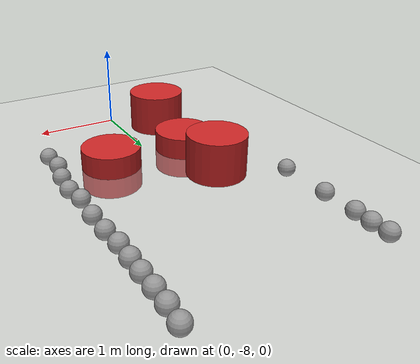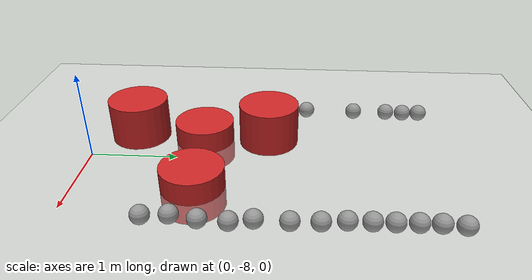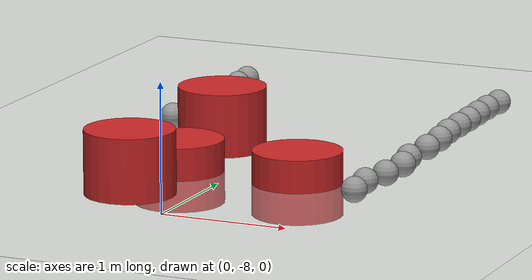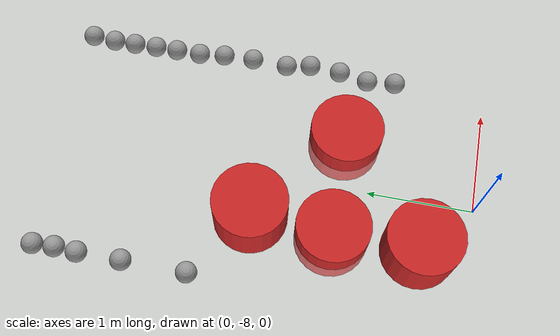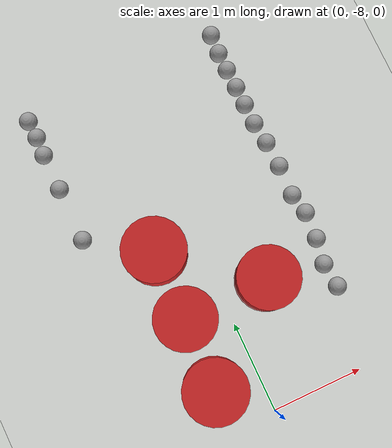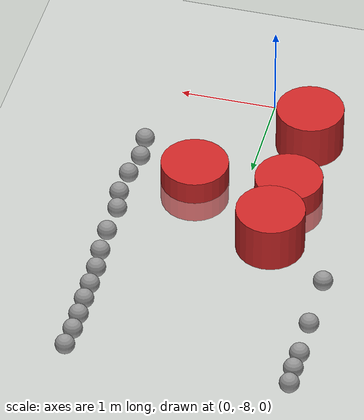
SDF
<sdf version="1.7">
 <world name="default">
  <model name="ground_plane">
   <static>1</static>
   <link name="link">
    <collision name="collision">
     <geometry><plane><normal>0 0 1</normal><size>100 100</size></plane></geometry>
     <surface>
      <contact><collide_bitmask>65535</collide_bitmask></contact>
      <friction><ode><mu>100</mu><mu2>50</mu2></ode></friction>
     </surface>
    </collision>
    <visual name="visual">
     <cast_shadows>0</cast_shadows>
     <geometry><plane><normal>0 0 1</normal><size>100 100</size></plane></geometry>
     <material>
      <script><uri>file://media/materials/scripts/gazebo.material</uri><name>Gazebo/White</name></script>
     </material>
    </visual>
   </link>
  </model>
  <model name="model8.3_0">
   <link name="link_1">
    <inertial>
     <mass>1</mass>
     <inertia><ixx>0.145833</ixx><ixy>0</ixy><ixz>0</ixz><iyy>0.145833</iyy><iyz>0</iyz><izz>0.125</izz></inertia>
    </inertial>
    <visual name="visual">
     <geometry><cylinder><radius>0.35</radius><length>0.5</length></cylinder></geometry>
     <material>
      <lighting>1</lighting>
      <script><uri>file://media/materials/scripts/gazebo.material</uri><name>Gazebo/Red</name></script>
      <shader type="pixel"><normal_map>__default__</normal_map></shader>
      <ambient>0.937 0.161 0.161 1</ambient>
      <diffuse>0.7 0.7 0.7 1</diffuse>
      <specular>0.01 0.01 0.01 1</specular>
      <emissive>0 0 0 1</emissive>
     </material>
    </visual>
    <collision name="collision">
     <geometry><cylinder><radius>0.35</radius><length>0.5</length></cylinder></geometry>
     <surface>
      <friction>
       <ode><mu>1</mu><mu2>1</mu2><fdir1>0 0 0</fdir1><slip1>0</slip1><slip2>0</slip2></ode>
       <torsional>
        <coefficient>1</coefficient>
        <patch_radius>0</patch_radius>
        <surface_radius>0</surface_radius>
        <use_patch_radius>1</use_patch_radius>
        <ode><slip>0</slip></ode>
       </torsional>
      </friction>
      <bounce><restitution_coefficient>0</restitution_coefficient><threshold>1e+06</threshold></bounce>
      <contact>
       <collide_without_contact>0</collide_without_contact>
       <collide_without_contact_bitmask>1</collide_without_contact_bitmask>
       <collide_bitmask>1</collide_bitmask>
       <ode>
        <soft_cfm>0</soft_cfm>
        <soft_erp>0.2</soft_erp>
        <kp>1e+13</kp>
        <kd>1</kd>
        <max_vel>0.01</max_vel>
        <min_depth>0</min_depth>
       </ode>
       <bullet>
        <split_impulse>1</split_impulse>
        <split_impulse_penetration_threshold>-0.01</split_impulse_penetration_threshold>
        <soft_cfm>0</soft_cfm>
        <soft_erp>0.2</soft_erp>
        <kp>1e+13</kp>
        <kd>1</kd>
       </bullet>
      </contact>
     </surface>
    </collision>
   </link>
   <static>0</static>
   <pose>-0.441492 -5.95517 0.249991 0 -0 0</pose>
  </model>
  <model name="model8.3_1">
   <link name="link_1">
    <inertial>
     <mass>1</mass>
     <inertia><ixx>0.145833</ixx><ixy>0</ixy><ixz>0</ixz><iyy>0.145833</iyy><iyz>0</iyz><izz>0.125</izz></inertia>
    </inertial>
    <visual name="visual">
     <geometry><cylinder><radius>0.35</radius><length>0.5</length></cylinder></geometry>
     <material>
      <lighting>1</lighting>
      <script><uri>file://media/materials/scripts/gazebo.material</uri><name>Gazebo/Red</name></script>
      <shader type="pixel"><normal_map>__default__</normal_map></shader>
      <ambient>0.937 0.161 0.161 1</ambient>
      <diffuse>0.7 0.7 0.7 1</diffuse>
      <specular>0.01 0.01 0.01 1</specular>
      <emissive>0 0 0 1</emissive>
     </material>
    </visual>
    <collision name="collision">
     <geometry><cylinder><radius>0.35</radius><length>0.5</length></cylinder></geometry>
     <surface>
      <friction>
       <ode><mu>1</mu><mu2>1</mu2><fdir1>0 0 0</fdir1><slip1>0</slip1><slip2>0</slip2></ode>
       <torsional>
        <coefficient>1</coefficient>
        <patch_radius>0</patch_radius>
        <surface_radius>0</surface_radius>
        <use_patch_radius>1</use_patch_radius>
        <ode><slip>0</slip></ode>
       </torsional>
      </friction>
      <bounce><restitution_coefficient>0</restitution_coefficient><threshold>1e+06</threshold></bounce>
      <contact>
       <collide_without_contact>0</collide_without_contact>
       <collide_without_contact_bitmask>1</collide_without_contact_bitmask>
       <collide_bitmask>1</collide_bitmask>
       <ode>
        <soft_cfm>0</soft_cfm>
        <soft_erp>0.2</soft_erp>
        <kp>1e+13</kp>
        <kd>1</kd>
        <max_vel>0.01</max_vel>
        <min_depth>0</min_depth>
       </ode>
       <bullet>
        <split_impulse>1</split_impulse>
        <split_impulse_penetration_threshold>-0.01</split_impulse_penetration_threshold>
        <soft_cfm>0</soft_cfm>
        <soft_erp>0.2</soft_erp>
        <kp>1e+13</kp>
        <kd>1</kd>
       </bullet>
      </contact>
     </surface>
    </collision>
   </link>
   <static>0</static>
   <pose>-0.483911 -7.5282 0.25 0 -0 0</pose>
  </model>
  <model name="sphere">
   <link name="link_0">
    <inertial>
     <mass>1</mass>
     <inertia><ixx>0.1</ixx><ixy>0</ixy><ixz>0</ixz><iyy>0.1</iyy><iyz>0</iyz><izz>0.1</izz></inertia>
    </inertial>
    <visual name="visual">
     <geometry><sphere><radius>0.1</radius></sphere></geometry>
     <material>
      <lighting>1</lighting>
      <script><uri>file://media/materials/scripts/gazebo.material</uri><name>Gazebo/Grey</name></script>
      <shader type="pixel"><normal_map>__default__</normal_map></shader>
      <ambient>0.3 0.3 0.3 1</ambient>
      <diffuse>0.7 0.7 0.7 1</diffuse>
      <specular>0.01 0.01 0.01 1</specular>
      <emissive>0 0 0 1</emissive>
     </material>
    </visual>
    <collision name="collision">
     <geometry><sphere><radius>0.1</radius></sphere></geometry>
     <surface>
      <friction>
       <ode><mu>1</mu><mu2>1</mu2><fdir1>0 0 0</fdir1><slip1>0</slip1><slip2>0</slip2></ode>
       <torsional>
        <coefficient>1</coefficient>
        <patch_radius>0</patch_radius>
        <surface_radius>0</surface_radius>
        <use_patch_radius>1</use_patch_radius>
        <ode><slip>0</slip></ode>
       </torsional>
      </friction>
      <bounce><restitution_coefficient>0</restitution_coefficient><threshold>1e+06</threshold></bounce>
      <contact>
       <collide_without_contact>0</collide_without_contact>
       <collide_without_contact_bitmask>1</collide_without_contact_bitmask>
       <collide_bitmask>1</collide_bitmask>
       <ode>
        <soft_cfm>0</soft_cfm>
        <soft_erp>0.2</soft_erp>
        <kp>1e+13</kp>
        <kd>1</kd>
        <max_vel>0.01</max_vel>
        <min_depth>0</min_depth>
       </ode>
       <bullet>
        <split_impulse>1</split_impulse>
        <split_impulse_penetration_threshold>-0.01</split_impulse_penetration_threshold>
        <soft_cfm>0</soft_cfm>
        <soft_erp>0.2</soft_erp>
        <kp>1e+13</kp>
        <kd>1</kd>
       </bullet>
      </contact>
     </surface>
    </collision>
   </link>
   <static>0</static>
   <pose>-1.09107 -5.49398 0.1 0.122091 -0.000389 0.00322</pose>
  </model>
  <model name="sphere_2">
   <link name="link_0">
    <inertial>
     <mass>1</mass>
     <inertia><ixx>0.1</ixx><ixy>0</ixy><ixz>0</ixz><iyy>0.1</iyy><iyz>0</iyz><izz>0.1</izz></inertia>
    </inertial>
    <visual name="visual">
     <geometry><sphere><radius>0.1</radius></sphere></geometry>
     <material>
      <lighting>1</lighting>
      <script><uri>file://media/materials/scripts/gazebo.material</uri><name>Gazebo/Grey</name></script>
      <shader type="pixel"><normal_map>__default__</normal_map></shader>
      <ambient>0.3 0.3 0.3 1</ambient>
      <diffuse>0.7 0.7 0.7 1</diffuse>
      <specular>0.01 0.01 0.01 1</specular>
      <emissive>0 0 0 1</emissive>
     </material>
    </visual>
    <collision name="collision">
     <geometry><sphere><radius>0.1</radius></sphere></geometry>
     <surface>
      <friction>
       <ode><mu>1</mu><mu2>1</mu2><fdir1>0 0 0</fdir1><slip1>0</slip1><slip2>0</slip2></ode>
       <torsional>
        <coefficient>1</coefficient>
        <patch_radius>0</patch_radius>
        <surface_radius>0</surface_radius>
        <use_patch_radius>1</use_patch_radius>
        <ode><slip>0</slip></ode>
       </torsional>
      </friction>
      <bounce><restitution_coefficient>0</restitution_coefficient><threshold>1e+06</threshold></bounce>
      <contact>
       <collide_without_contact>0</collide_without_contact>
       <collide_without_contact_bitmask>1</collide_without_contact_bitmask>
       <collide_bitmask>1</collide_bitmask>
       <ode>
        <soft_cfm>0</soft_cfm>
        <soft_erp>0.2</soft_erp>
        <kp>1e+13</kp>
        <kd>1</kd>
        <max_vel>0.01</max_vel>
        <min_depth>0</min_depth>
       </ode>
       <bullet>
        <split_impulse>1</split_impulse>
        <split_impulse_penetration_threshold>-0.01</split_impulse_penetration_threshold>
        <soft_cfm>0</soft_cfm>
        <soft_erp>0.2</soft_erp>
        <kp>1e+13</kp>
        <kd>1</kd>
       </bullet>
      </contact>
     </surface>
    </collision>
   </link>
   <static>0</static>
   <pose>-1.09009 -4.88333 0.1 0 -0 0</pose>
  </model>
  <model name="sphere_4">
   <link name="link_0">
    <inertial>
     <mass>1</mass>
     <inertia><ixx>0.1</ixx><ixy>0</ixy><ixz>0</ixz><iyy>0.1</iyy><iyz>0</iyz><izz>0.1</izz></inertia>
    </inertial>
    <visual name="visual">
     <geometry><sphere><radius>0.1</radius></sphere></geometry>
     <material>
      <lighting>1</lighting>
      <script><uri>file://media/materials/scripts/gazebo.material</uri><name>Gazebo/Grey</name></script>
      <shader type="pixel"><normal_map>__default__</normal_map></shader>
      <ambient>0.3 0.3 0.3 1</ambient>
      <diffuse>0.7 0.7 0.7 1</diffuse>
      <specular>0.01 0.01 0.01 1</specular>
      <emissive>0 0 0 1</emissive>
     </material>
    </visual>
    <collision name="collision">
     <geometry><sphere><radius>0.1</radius></sphere></geometry>
     <surface>
      <friction>
       <ode><mu>1</mu><mu2>1</mu2><fdir1>0 0 0</fdir1><slip1>0</slip1><slip2>0</slip2></ode>
       <torsional>
        <coefficient>1</coefficient>
        <patch_radius>0</patch_radius>
        <surface_radius>0</surface_radius>
        <use_patch_radius>1</use_patch_radius>
        <ode><slip>0</slip></ode>
       </torsional>
      </friction>
      <bounce><restitution_coefficient>0</restitution_coefficient><threshold>1e+06</threshold></bounce>
      <contact>
       <collide_without_contact>0</collide_without_contact>
       <collide_without_contact_bitmask>1</collide_without_contact_bitmask>
       <collide_bitmask>1</collide_bitmask>
       <ode>
        <soft_cfm>0</soft_cfm>
        <soft_erp>0.2</soft_erp>
        <kp>1e+13</kp>
        <kd>1</kd>
        <max_vel>0.01</max_vel>
        <min_depth>0</min_depth>
       </ode>
       <bullet>
        <split_impulse>1</split_impulse>
        <split_impulse_penetration_threshold>-0.01</split_impulse_penetration_threshold>
        <soft_cfm>0</soft_cfm>
        <soft_erp>0.2</soft_erp>
        <kp>1e+13</kp>
        <kd>1</kd>
       </bullet>
      </contact>
     </surface>
    </collision>
   </link>
   <static>0</static>
   <pose>-1.0917 -4.46699 0.1 0 -0 0</pose>
  </model>
  <model name="sphere_5">
   <link name="link_0">
    <inertial>
     <mass>1</mass>
     <inertia><ixx>0.1</ixx><ixy>0</ixy><ixz>0</ixz><iyy>0.1</iyy><iyz>0</iyz><izz>0.1</izz></inertia>
    </inertial>
    <visual name="visual">
     <geometry><sphere><radius>0.1</radius></sphere></geometry>
     <material>
      <lighting>1</lighting>
      <script><uri>file://media/materials/scripts/gazebo.material</uri><name>Gazebo/Grey</name></script>
      <shader type="pixel"><normal_map>__default__</normal_map></shader>
      <ambient>0.3 0.3 0.3 1</ambient>
      <diffuse>0.7 0.7 0.7 1</diffuse>
      <specular>0.01 0.01 0.01 1</specular>
      <emissive>0 0 0 1</emissive>
     </material>
    </visual>
    <collision name="collision">
     <geometry><sphere><radius>0.1</radius></sphere></geometry>
     <surface>
      <friction>
       <ode><mu>1</mu><mu2>1</mu2><fdir1>0 0 0</fdir1><slip1>0</slip1><slip2>0</slip2></ode>
       <torsional>
        <coefficient>1</coefficient>
        <patch_radius>0</patch_radius>
        <surface_radius>0</surface_radius>
        <use_patch_radius>1</use_patch_radius>
        <ode><slip>0</slip></ode>
       </torsional>
      </friction>
      <bounce><restitution_coefficient>0</restitution_coefficient><threshold>1e+06</threshold></bounce>
      <contact>
       <collide_without_contact>0</collide_without_contact>
       <collide_without_contact_bitmask>1</collide_without_contact_bitmask>
       <collide_bitmask>1</collide_bitmask>
       <ode>
        <soft_cfm>0</soft_cfm>
        <soft_erp>0.2</soft_erp>
        <kp>1e+13</kp>
        <kd>1</kd>
        <max_vel>0.01</max_vel>
        <min_depth>0</min_depth>
       </ode>
       <bullet>
        <split_impulse>1</split_impulse>
        <split_impulse_penetration_threshold>-0.01</split_impulse_penetration_threshold>
        <soft_cfm>0</soft_cfm>
        <soft_erp>0.2</soft_erp>
        <kp>1e+13</kp>
        <kd>1</kd>
       </bullet>
      </contact>
     </surface>
    </collision>
   </link>
   <static>0</static>
   <pose>-1.08101 -4.25403 0.1 0.127097 0.006179 -0.000169</pose>
  </model>
  <model name="sphere_6">
   <link name="link_0">
    <inertial>
     <mass>1</mass>
     <inertia><ixx>0.1</ixx><ixy>0</ixy><ixz>0</ixz><iyy>0.1</iyy><iyz>0</iyz><izz>0.1</izz></inertia>
    </inertial>
    <visual name="visual">
     <geometry><sphere><radius>0.1</radius></sphere></geometry>
     <material>
      <lighting>1</lighting>
      <script><uri>file://media/materials/scripts/gazebo.material</uri><name>Gazebo/Grey</name></script>
      <shader type="pixel"><normal_map>__default__</normal_map></shader>
      <ambient>0.3 0.3 0.3 1</ambient>
      <diffuse>0.7 0.7 0.7 1</diffuse>
      <specular>0.01 0.01 0.01 1</specular>
      <emissive>0 0 0 1</emissive>
     </material>
    </visual>
    <collision name="collision">
     <geometry><sphere><radius>0.1</radius></sphere></geometry>
     <surface>
      <friction>
       <ode><mu>1</mu><mu2>1</mu2><fdir1>0 0 0</fdir1><slip1>0</slip1><slip2>0</slip2></ode>
       <torsional>
        <coefficient>1</coefficient>
        <patch_radius>0</patch_radius>
        <surface_radius>0</surface_radius>
        <use_patch_radius>1</use_patch_radius>
        <ode><slip>0</slip></ode>
       </torsional>
      </friction>
      <bounce><restitution_coefficient>0</restitution_coefficient><threshold>1e+06</threshold></bounce>
      <contact>
       <collide_without_contact>0</collide_without_contact>
       <collide_without_contact_bitmask>1</collide_without_contact_bitmask>
       <collide_bitmask>1</collide_bitmask>
       <ode>
        <soft_cfm>0</soft_cfm>
        <soft_erp>0.2</soft_erp>
        <kp>1e+13</kp>
        <kd>1</kd>
        <max_vel>0.01</max_vel>
        <min_depth>0</min_depth>
       </ode>
       <bullet>
        <split_impulse>1</split_impulse>
        <split_impulse_penetration_threshold>-0.01</split_impulse_penetration_threshold>
        <soft_cfm>0</soft_cfm>
        <soft_erp>0.2</soft_erp>
        <kp>1e+13</kp>
        <kd>1</kd>
       </bullet>
      </contact>
     </surface>
    </collision>
   </link>
   <static>0</static>
   <pose>-1.08988 -4.04926 0.1 -0.122309 -0.005909 -0.000202</pose>
  </model>
  <model name="sphere_42">
   <link name="link_0">
    <inertial>
     <mass>1</mass>
     <inertia><ixx>0.1</ixx><ixy>0</ixy><ixz>0</ixz><iyy>0.1</iyy><iyz>0</iyz><izz>0.1</izz></inertia>
    </inertial>
    <visual name="visual">
     <geometry><sphere><radius>0.1</radius></sphere></geometry>
     <material>
      <lighting>1</lighting>
      <script><uri>file://media/materials/scripts/gazebo.material</uri><name>Gazebo/Grey</name></script>
      <shader type="pixel"><normal_map>__default__</normal_map></shader>
      <ambient>0.3 0.3 0.3 1</ambient>
      <diffuse>0.7 0.7 0.7 1</diffuse>
      <specular>0.01 0.01 0.01 1</specular>
      <emissive>0 0 0 1</emissive>
     </material>
    </visual>
    <collision name="collision">
     <geometry><sphere><radius>0.1</radius></sphere></geometry>
     <surface>
      <friction>
       <ode><mu>1</mu><mu2>1</mu2><fdir1>0 0 0</fdir1><slip1>0</slip1><slip2>0</slip2></ode>
       <torsional>
        <coefficient>1</coefficient>
        <patch_radius>0</patch_radius>
        <surface_radius>0</surface_radius>
        <use_patch_radius>1</use_patch_radius>
        <ode><slip>0</slip></ode>
       </torsional>
      </friction>
      <bounce><restitution_coefficient>0</restitution_coefficient><threshold>1e+06</threshold></bounce>
      <contact>
       <collide_without_contact>0</collide_without_contact>
       <collide_without_contact_bitmask>1</collide_without_contact_bitmask>
       <collide_bitmask>1</collide_bitmask>
       <ode>
        <soft_cfm>0</soft_cfm>
        <soft_erp>0.2</soft_erp>
        <kp>1e+13</kp>
        <kd>1</kd>
        <max_vel>0.01</max_vel>
        <min_depth>0</min_depth>
       </ode>
       <bullet>
        <split_impulse>1</split_impulse>
        <split_impulse_penetration_threshold>-0.01</split_impulse_penetration_threshold>
        <soft_cfm>0</soft_cfm>
        <soft_erp>0.2</soft_erp>
        <kp>1e+13</kp>
        <kd>1</kd>
       </bullet>
      </contact>
     </surface>
    </collision>
   </link>
   <static>0</static>
   <pose>1.1374 -4.01935 0.1 0 -0 0</pose>
  </model>
  <model name="sphere_43">
   <link name="link_0">
    <inertial>
     <mass>1</mass>
     <inertia><ixx>0.1</ixx><ixy>0</ixy><ixz>0</ixz><iyy>0.1</iyy><iyz>0</iyz><izz>0.1</izz></inertia>
    </inertial>
    <visual name="visual">
     <geometry><sphere><radius>0.1</radius></sphere></geometry>
     <material>
      <lighting>1</lighting>
      <script><uri>file://media/materials/scripts/gazebo.material</uri><name>Gazebo/Grey</name></script>
      <shader type="pixel"><normal_map>__default__</normal_map></shader>
      <ambient>0.3 0.3 0.3 1</ambient>
      <diffuse>0.7 0.7 0.7 1</diffuse>
      <specular>0.01 0.01 0.01 1</specular>
      <emissive>0 0 0 1</emissive>
     </material>
    </visual>
    <collision name="collision">
     <geometry><sphere><radius>0.1</radius></sphere></geometry>
     <surface>
      <friction>
       <ode><mu>1</mu><mu2>1</mu2><fdir1>0 0 0</fdir1><slip1>0</slip1><slip2>0</slip2></ode>
       <torsional>
        <coefficient>1</coefficient>
        <patch_radius>0</patch_radius>
        <surface_radius>0</surface_radius>
        <use_patch_radius>1</use_patch_radius>
        <ode><slip>0</slip></ode>
       </torsional>
      </friction>
      <bounce><restitution_coefficient>0</restitution_coefficient><threshold>1e+06</threshold></bounce>
      <contact>
       <collide_without_contact>0</collide_without_contact>
       <collide_without_contact_bitmask>1</collide_without_contact_bitmask>
       <collide_bitmask>1</collide_bitmask>
       <ode>
        <soft_cfm>0</soft_cfm>
        <soft_erp>0.2</soft_erp>
        <kp>1e+13</kp>
        <kd>1</kd>
        <max_vel>0.01</max_vel>
        <min_depth>0</min_depth>
       </ode>
       <bullet>
        <split_impulse>1</split_impulse>
        <split_impulse_penetration_threshold>-0.01</split_impulse_penetration_threshold>
        <soft_cfm>0</soft_cfm>
        <soft_erp>0.2</soft_erp>
        <kp>1e+13</kp>
        <kd>1</kd>
       </bullet>
      </contact>
     </surface>
    </collision>
   </link>
   <static>0</static>
   <pose>1.1228 -4.2431 0.1 0 -0 0</pose>
  </model>
  <model name="sphere_44">
   <link name="link_0">
    <inertial>
     <mass>1</mass>
     <inertia><ixx>0.1</ixx><ixy>0</ixy><ixz>0</ixz><iyy>0.1</iyy><iyz>0</iyz><izz>0.1</izz></inertia>
    </inertial>
    <visual name="visual">
     <geometry><sphere><radius>0.1</radius></sphere></geometry>
     <material>
      <lighting>1</lighting>
      <script><uri>file://media/materials/scripts/gazebo.material</uri><name>Gazebo/Grey</name></script>
      <shader type="pixel"><normal_map>__default__</normal_map></shader>
      <ambient>0.3 0.3 0.3 1</ambient>
      <diffuse>0.7 0.7 0.7 1</diffuse>
      <specular>0.01 0.01 0.01 1</specular>
      <emissive>0 0 0 1</emissive>
     </material>
    </visual>
    <collision name="collision">
     <geometry><sphere><radius>0.1</radius></sphere></geometry>
     <surface>
      <friction>
       <ode><mu>1</mu><mu2>1</mu2><fdir1>0 0 0</fdir1><slip1>0</slip1><slip2>0</slip2></ode>
       <torsional>
        <coefficient>1</coefficient>
        <patch_radius>0</patch_radius>
        <surface_radius>0</surface_radius>
        <use_patch_radius>1</use_patch_radius>
        <ode><slip>0</slip></ode>
       </torsional>
      </friction>
      <bounce><restitution_coefficient>0</restitution_coefficient><threshold>1e+06</threshold></bounce>
      <contact>
       <collide_without_contact>0</collide_without_contact>
       <collide_without_contact_bitmask>1</collide_without_contact_bitmask>
       <collide_bitmask>1</collide_bitmask>
       <ode>
        <soft_cfm>0</soft_cfm>
        <soft_erp>0.2</soft_erp>
        <kp>1e+13</kp>
        <kd>1</kd>
        <max_vel>0.01</max_vel>
        <min_depth>0</min_depth>
       </ode>
       <bullet>
        <split_impulse>1</split_impulse>
        <split_impulse_penetration_threshold>-0.01</split_impulse_penetration_threshold>
        <soft_cfm>0</soft_cfm>
        <soft_erp>0.2</soft_erp>
        <kp>1e+13</kp>
        <kd>1</kd>
       </bullet>
      </contact>
     </surface>
    </collision>
   </link>
   <static>0</static>
   <pose>1.12465 -4.45438 0.1 0 -0 0</pose>
  </model>
  <model name="sphere_45">
   <link name="link_0">
    <inertial>
     <mass>1</mass>
     <inertia><ixx>0.1</ixx><ixy>0</ixy><ixz>0</ixz><iyy>0.1</iyy><iyz>0</iyz><izz>0.1</izz></inertia>
    </inertial>
    <visual name="visual">
     <geometry><sphere><radius>0.1</radius></sphere></geometry>
     <material>
      <lighting>1</lighting>
      <script><uri>file://media/materials/scripts/gazebo.material</uri><name>Gazebo/Grey</name></script>
      <shader type="pixel"><normal_map>__default__</normal_map></shader>
      <ambient>0.3 0.3 0.3 1</ambient>
      <diffuse>0.7 0.7 0.7 1</diffuse>
      <specular>0.01 0.01 0.01 1</specular>
      <emissive>0 0 0 1</emissive>
     </material>
    </visual>
    <collision name="collision">
     <geometry><sphere><radius>0.1</radius></sphere></geometry>
     <surface>
      <friction>
       <ode><mu>1</mu><mu2>1</mu2><fdir1>0 0 0</fdir1><slip1>0</slip1><slip2>0</slip2></ode>
       <torsional>
        <coefficient>1</coefficient>
        <patch_radius>0</patch_radius>
        <surface_radius>0</surface_radius>
        <use_patch_radius>1</use_patch_radius>
        <ode><slip>0</slip></ode>
       </torsional>
      </friction>
      <bounce><restitution_coefficient>0</restitution_coefficient><threshold>1e+06</threshold></bounce>
      <contact>
       <collide_without_contact>0</collide_without_contact>
       <collide_without_contact_bitmask>1</collide_without_contact_bitmask>
       <collide_bitmask>1</collide_bitmask>
       <ode>
        <soft_cfm>0</soft_cfm>
        <soft_erp>0.2</soft_erp>
        <kp>1e+13</kp>
        <kd>1</kd>
        <max_vel>0.01</max_vel>
        <min_depth>0</min_depth>
       </ode>
       <bullet>
        <split_impulse>1</split_impulse>
        <split_impulse_penetration_threshold>-0.01</split_impulse_penetration_threshold>
        <soft_cfm>0</soft_cfm>
        <soft_erp>0.2</soft_erp>
        <kp>1e+13</kp>
        <kd>1</kd>
       </bullet>
      </contact>
     </surface>
    </collision>
   </link>
   <static>0</static>
   <pose>1.13072 -4.67398 0.1 0 -0 0</pose>
  </model>
  <model name="sphere_46">
   <link name="link_0">
    <inertial>
     <mass>1</mass>
     <inertia><ixx>0.1</ixx><ixy>0</ixy><ixz>0</ixz><iyy>0.1</iyy><iyz>0</iyz><izz>0.1</izz></inertia>
    </inertial>
    <visual name="visual">
     <geometry><sphere><radius>0.1</radius></sphere></geometry>
     <material>
      <lighting>1</lighting>
      <script><uri>file://media/materials/scripts/gazebo.material</uri><name>Gazebo/Grey</name></script>
      <shader type="pixel"><normal_map>__default__</normal_map></shader>
      <ambient>0.3 0.3 0.3 1</ambient>
      <diffuse>0.7 0.7 0.7 1</diffuse>
      <specular>0.01 0.01 0.01 1</specular>
      <emissive>0 0 0 1</emissive>
     </material>
    </visual>
    <collision name="collision">
     <geometry><sphere><radius>0.1</radius></sphere></geometry>
     <surface>
      <friction>
       <ode><mu>1</mu><mu2>1</mu2><fdir1>0 0 0</fdir1><slip1>0</slip1><slip2>0</slip2></ode>
       <torsional>
        <coefficient>1</coefficient>
        <patch_radius>0</patch_radius>
        <surface_radius>0</surface_radius>
        <use_patch_radius>1</use_patch_radius>
        <ode><slip>0</slip></ode>
       </torsional>
      </friction>
      <bounce><restitution_coefficient>0</restitution_coefficient><threshold>1e+06</threshold></bounce>
      <contact>
       <collide_without_contact>0</collide_without_contact>
       <collide_without_contact_bitmask>1</collide_without_contact_bitmask>
       <collide_bitmask>1</collide_bitmask>
       <ode>
        <soft_cfm>0</soft_cfm>
        <soft_erp>0.2</soft_erp>
        <kp>1e+13</kp>
        <kd>1</kd>
        <max_vel>0.01</max_vel>
        <min_depth>0</min_depth>
       </ode>
       <bullet>
        <split_impulse>1</split_impulse>
        <split_impulse_penetration_threshold>-0.01</split_impulse_penetration_threshold>
        <soft_cfm>0</soft_cfm>
        <soft_erp>0.2</soft_erp>
        <kp>1e+13</kp>
        <kd>1</kd>
       </bullet>
      </contact>
     </surface>
    </collision>
   </link>
   <static>0</static>
   <pose>1.13261 -4.88956 0.1 0 -0 0</pose>
  </model>
  <model name="sphere_47">
   <link name="link_0">
    <inertial>
     <mass>1</mass>
     <inertia><ixx>0.1</ixx><ixy>0</ixy><ixz>0</ixz><iyy>0.1</iyy><iyz>0</iyz><izz>0.1</izz></inertia>
    </inertial>
    <visual name="visual">
     <geometry><sphere><radius>0.1</radius></sphere></geometry>
     <material>
      <lighting>1</lighting>
      <script><uri>file://media/materials/scripts/gazebo.material</uri><name>Gazebo/Grey</name></script>
      <shader type="pixel"><normal_map>__default__</normal_map></shader>
      <ambient>0.3 0.3 0.3 1</ambient>
      <diffuse>0.7 0.7 0.7 1</diffuse>
      <specular>0.01 0.01 0.01 1</specular>
      <emissive>0 0 0 1</emissive>
     </material>
    </visual>
    <collision name="collision">
     <geometry><sphere><radius>0.1</radius></sphere></geometry>
     <surface>
      <friction>
       <ode><mu>1</mu><mu2>1</mu2><fdir1>0 0 0</fdir1><slip1>0</slip1><slip2>0</slip2></ode>
       <torsional>
        <coefficient>1</coefficient>
        <patch_radius>0</patch_radius>
        <surface_radius>0</surface_radius>
        <use_patch_radius>1</use_patch_radius>
        <ode><slip>0</slip></ode>
       </torsional>
      </friction>
      <bounce><restitution_coefficient>0</restitution_coefficient><threshold>1e+06</threshold></bounce>
      <contact>
       <collide_without_contact>0</collide_without_contact>
       <collide_without_contact_bitmask>1</collide_without_contact_bitmask>
       <collide_bitmask>1</collide_bitmask>
       <ode>
        <soft_cfm>0</soft_cfm>
        <soft_erp>0.2</soft_erp>
        <kp>1e+13</kp>
        <kd>1</kd>
        <max_vel>0.01</max_vel>
        <min_depth>0</min_depth>
       </ode>
       <bullet>
        <split_impulse>1</split_impulse>
        <split_impulse_penetration_threshold>-0.01</split_impulse_penetration_threshold>
        <soft_cfm>0</soft_cfm>
        <soft_erp>0.2</soft_erp>
        <kp>1e+13</kp>
        <kd>1</kd>
       </bullet>
      </contact>
     </surface>
    </collision>
   </link>
   <static>0</static>
   <pose>1.13468 -5.12597 0.1 0 -0 0</pose>
  </model>
  <model name="sphere_48">
   <link name="link_0">
    <inertial>
     <mass>1</mass>
     <inertia><ixx>0.1</ixx><ixy>0</ixy><ixz>0</ixz><iyy>0.1</iyy><iyz>0</iyz><izz>0.1</izz></inertia>
    </inertial>
    <visual name="visual">
     <geometry><sphere><radius>0.1</radius></sphere></geometry>
     <material>
      <lighting>1</lighting>
      <script><uri>file://media/materials/scripts/gazebo.material</uri><name>Gazebo/Grey</name></script>
      <shader type="pixel"><normal_map>__default__</normal_map></shader>
      <ambient>0.3 0.3 0.3 1</ambient>
      <diffuse>0.7 0.7 0.7 1</diffuse>
      <specular>0.01 0.01 0.01 1</specular>
      <emissive>0 0 0 1</emissive>
     </material>
    </visual>
    <collision name="collision">
     <geometry><sphere><radius>0.1</radius></sphere></geometry>
     <surface>
      <friction>
       <ode><mu>1</mu><mu2>1</mu2><fdir1>0 0 0</fdir1><slip1>0</slip1><slip2>0</slip2></ode>
       <torsional>
        <coefficient>1</coefficient>
        <patch_radius>0</patch_radius>
        <surface_radius>0</surface_radius>
        <use_patch_radius>1</use_patch_radius>
        <ode><slip>0</slip></ode>
       </torsional>
      </friction>
      <bounce><restitution_coefficient>0</restitution_coefficient><threshold>1e+06</threshold></bounce>
      <contact>
       <collide_without_contact>0</collide_without_contact>
       <collide_without_contact_bitmask>1</collide_without_contact_bitmask>
       <collide_bitmask>1</collide_bitmask>
       <ode>
        <soft_cfm>0</soft_cfm>
        <soft_erp>0.2</soft_erp>
        <kp>1e+13</kp>
        <kd>1</kd>
        <max_vel>0.01</max_vel>
        <min_depth>0</min_depth>
       </ode>
       <bullet>
        <split_impulse>1</split_impulse>
        <split_impulse_penetration_threshold>-0.01</split_impulse_penetration_threshold>
        <soft_cfm>0</soft_cfm>
        <soft_erp>0.2</soft_erp>
        <kp>1e+13</kp>
        <kd>1</kd>
       </bullet>
      </contact>
     </surface>
    </collision>
   </link>
   <static>0</static>
   <pose>1.16174 -5.37471 0.1 0 -0 0</pose>
  </model>
  <model name="sphere_113">
   <link name="link_0">
    <inertial>
     <mass>1</mass>
     <inertia><ixx>0.1</ixx><ixy>0</ixy><ixz>0</ixz><iyy>0.1</iyy><iyz>0</iyz><izz>0.1</izz></inertia>
    </inertial>
    <visual name="visual">
     <geometry><sphere><radius>0.1</radius></sphere></geometry>
     <material>
      <lighting>1</lighting>
      <script><uri>file://media/materials/scripts/gazebo.material</uri><name>Gazebo/Grey</name></script>
      <shader type="pixel"><normal_map>__default__</normal_map></shader>
      <ambient>0.3 0.3 0.3 1</ambient>
      <diffuse>0.7 0.7 0.7 1</diffuse>
      <specular>0.01 0.01 0.01 1</specular>
      <emissive>0 0 0 1</emissive>
     </material>
    </visual>
    <collision name="collision">
     <geometry><sphere><radius>0.1</radius></sphere></geometry>
     <surface>
      <friction>
       <ode><mu>1</mu><mu2>1</mu2><fdir1>0 0 0</fdir1><slip1>0</slip1><slip2>0</slip2></ode>
       <torsional>
        <coefficient>1</coefficient>
        <patch_radius>0</patch_radius>
        <surface_radius>0</surface_radius>
        <use_patch_radius>1</use_patch_radius>
        <ode><slip>0</slip></ode>
       </torsional>
      </friction>
      <bounce><restitution_coefficient>0</restitution_coefficient><threshold>1e+06</threshold></bounce>
      <contact>
       <collide_without_contact>0</collide_without_contact>
       <collide_without_contact_bitmask>1</collide_without_contact_bitmask>
       <collide_bitmask>1</collide_bitmask>
       <ode>
        <soft_cfm>0</soft_cfm>
        <soft_erp>0.2</soft_erp>
        <kp>1e+13</kp>
        <kd>1</kd>
        <max_vel>0.01</max_vel>
        <min_depth>0</min_depth>
       </ode>
       <bullet>
        <split_impulse>1</split_impulse>
        <split_impulse_penetration_threshold>-0.01</split_impulse_penetration_threshold>
        <soft_cfm>0</soft_cfm>
        <soft_erp>0.2</soft_erp>
        <kp>1e+13</kp>
        <kd>1</kd>
       </bullet>
      </contact>
     </surface>
    </collision>
   </link>
   <static>0</static>
   <pose>1.1735 -5.66849 0.1 0 -0 0</pose>
  </model>
  <model name="sphere_114">
   <link name="link_0">
    <inertial>
     <mass>1</mass>
     <inertia><ixx>0.1</ixx><ixy>0</ixy><ixz>0</ixz><iyy>0.1</iyy><iyz>0</iyz><izz>0.1</izz></inertia>
    </inertial>
    <visual name="visual">
     <geometry><sphere><radius>0.1</radius></sphere></geometry>
     <material>
      <lighting>1</lighting>
      <script><uri>file://media/materials/scripts/gazebo.material</uri><name>Gazebo/Grey</name></script>
      <shader type="pixel"><normal_map>__default__</normal_map></shader>
      <ambient>0.3 0.3 0.3 1</ambient>
      <diffuse>0.7 0.7 0.7 1</diffuse>
      <specular>0.01 0.01 0.01 1</specular>
      <emissive>0 0 0 1</emissive>
     </material>
    </visual>
    <collision name="collision">
     <geometry><sphere><radius>0.1</radius></sphere></geometry>
     <surface>
      <friction>
       <ode><mu>1</mu><mu2>1</mu2><fdir1>0 0 0</fdir1><slip1>0</slip1><slip2>0</slip2></ode>
       <torsional>
        <coefficient>1</coefficient>
        <patch_radius>0</patch_radius>
        <surface_radius>0</surface_radius>
        <use_patch_radius>1</use_patch_radius>
        <ode><slip>0</slip></ode>
       </torsional>
      </friction>
      <bounce><restitution_coefficient>0</restitution_coefficient><threshold>1e+06</threshold></bounce>
      <contact>
       <collide_without_contact>0</collide_without_contact>
       <collide_without_contact_bitmask>1</collide_without_contact_bitmask>
       <collide_bitmask>1</collide_bitmask>
       <ode>
        <soft_cfm>0</soft_cfm>
        <soft_erp>0.2</soft_erp>
        <kp>1e+13</kp>
        <kd>1</kd>
        <max_vel>0.01</max_vel>
        <min_depth>0</min_depth>
       </ode>
       <bullet>
        <split_impulse>1</split_impulse>
        <split_impulse_penetration_threshold>-0.01</split_impulse_penetration_threshold>
        <soft_cfm>0</soft_cfm>
        <soft_erp>0.2</soft_erp>
        <kp>1e+13</kp>
        <kd>1</kd>
       </bullet>
      </contact>
     </surface>
    </collision>
   </link>
   <static>0</static>
   <pose>1.16185 -6.01322 0.1 0 -0 0</pose>
  </model>
  <model name="sphere_115">
   <link name="link_0">
    <inertial>
     <mass>1</mass>
     <inertia><ixx>0.1</ixx><ixy>0</ixy><ixz>0</ixz><iyy>0.1</iyy><iyz>0</iyz><izz>0.1</izz></inertia>
    </inertial>
    <visual name="visual">
     <geometry><sphere><radius>0.1</radius></sphere></geometry>
     <material>
      <lighting>1</lighting>
      <script><uri>file://media/materials/scripts/gazebo.material</uri><name>Gazebo/Grey</name></script>
      <shader type="pixel"><normal_map>__default__</normal_map></shader>
      <ambient>0.3 0.3 0.3 1</ambient>
      <diffuse>0.7 0.7 0.7 1</diffuse>
      <specular>0.01 0.01 0.01 1</specular>
      <emissive>0 0 0 1</emissive>
     </material>
    </visual>
    <collision name="collision">
     <geometry><sphere><radius>0.1</radius></sphere></geometry>
     <surface>
      <friction>
       <ode><mu>1</mu><mu2>1</mu2><fdir1>0 0 0</fdir1><slip1>0</slip1><slip2>0</slip2></ode>
       <torsional>
        <coefficient>1</coefficient>
        <patch_radius>0</patch_radius>
        <surface_radius>0</surface_radius>
        <use_patch_radius>1</use_patch_radius>
        <ode><slip>0</slip></ode>
       </torsional>
      </friction>
      <bounce><restitution_coefficient>0</restitution_coefficient><threshold>1e+06</threshold></bounce>
      <contact>
       <collide_without_contact>0</collide_without_contact>
       <collide_without_contact_bitmask>1</collide_without_contact_bitmask>
       <collide_bitmask>1</collide_bitmask>
       <ode>
        <soft_cfm>0</soft_cfm>
        <soft_erp>0.2</soft_erp>
        <kp>1e+13</kp>
        <kd>1</kd>
        <max_vel>0.01</max_vel>
        <min_depth>0</min_depth>
       </ode>
       <bullet>
        <split_impulse>1</split_impulse>
        <split_impulse_penetration_threshold>-0.01</split_impulse_penetration_threshold>
        <soft_cfm>0</soft_cfm>
        <soft_erp>0.2</soft_erp>
        <kp>1e+13</kp>
        <kd>1</kd>
       </bullet>
      </contact>
     </surface>
    </collision>
   </link>
   <static>0</static>
   <pose>1.20708 -6.24842 0.1 0 -0 0</pose>
  </model>
  <model name="sphere_116">
   <link name="link_0">
    <inertial>
     <mass>1</mass>
     <inertia><ixx>0.1</ixx><ixy>0</ixy><ixz>0</ixz><iyy>0.1</iyy><iyz>0</iyz><izz>0.1</izz></inertia>
    </inertial>
    <visual name="visual">
     <geometry><sphere><radius>0.1</radius></sphere></geometry>
     <material>
      <lighting>1</lighting>
      <script><uri>file://media/materials/scripts/gazebo.material</uri><name>Gazebo/Grey</name></script>
      <shader type="pixel"><normal_map>__default__</normal_map></shader>
      <ambient>0.3 0.3 0.3 1</ambient>
      <diffuse>0.7 0.7 0.7 1</diffuse>
      <specular>0.01 0.01 0.01 1</specular>
      <emissive>0 0 0 1</emissive>
     </material>
    </visual>
    <collision name="collision">
     <geometry><sphere><radius>0.1</radius></sphere></geometry>
     <surface>
      <friction>
       <ode><mu>1</mu><mu2>1</mu2><fdir1>0 0 0</fdir1><slip1>0</slip1><slip2>0</slip2></ode>
       <torsional>
        <coefficient>1</coefficient>
        <patch_radius>0</patch_radius>
        <surface_radius>0</surface_radius>
        <use_patch_radius>1</use_patch_radius>
        <ode><slip>0</slip></ode>
       </torsional>
      </friction>
      <bounce><restitution_coefficient>0</restitution_coefficient><threshold>1e+06</threshold></bounce>
      <contact>
       <collide_without_contact>0</collide_without_contact>
       <collide_without_contact_bitmask>1</collide_without_contact_bitmask>
       <collide_bitmask>1</collide_bitmask>
       <ode>
        <soft_cfm>0</soft_cfm>
        <soft_erp>0.2</soft_erp>
        <kp>1e+13</kp>
        <kd>1</kd>
        <max_vel>0.01</max_vel>
        <min_depth>0</min_depth>
       </ode>
       <bullet>
        <split_impulse>1</split_impulse>
        <split_impulse_penetration_threshold>-0.01</split_impulse_penetration_threshold>
        <soft_cfm>0</soft_cfm>
        <soft_erp>0.2</soft_erp>
        <kp>1e+13</kp>
        <kd>1</kd>
       </bullet>
      </contact>
     </surface>
    </collision>
   </link>
   <static>0</static>
   <pose>1.18894 -6.54856 0.1 0 -0 0</pose>
  </model>
  <model name="sphere_117">
   <link name="link_0">
    <inertial>
     <mass>1</mass>
     <inertia><ixx>0.1</ixx><ixy>0</ixy><ixz>0</ixz><iyy>0.1</iyy><iyz>0</iyz><izz>0.1</izz></inertia>
    </inertial>
    <visual name="visual">
     <geometry><sphere><radius>0.1</radius></sphere></geometry>
     <material>
      <lighting>1</lighting>
      <script><uri>file://media/materials/scripts/gazebo.material</uri><name>Gazebo/Grey</name></script>
      <shader type="pixel"><normal_map>__default__</normal_map></shader>
      <ambient>0.3 0.3 0.3 1</ambient>
      <diffuse>0.7 0.7 0.7 1</diffuse>
      <specular>0.01 0.01 0.01 1</specular>
      <emissive>0 0 0 1</emissive>
     </material>
    </visual>
    <collision name="collision">
     <geometry><sphere><radius>0.1</radius></sphere></geometry>
     <surface>
      <friction>
       <ode><mu>1</mu><mu2>1</mu2><fdir1>0 0 0</fdir1><slip1>0</slip1><slip2>0</slip2></ode>
       <torsional>
        <coefficient>1</coefficient>
        <patch_radius>0</patch_radius>
        <surface_radius>0</surface_radius>
        <use_patch_radius>1</use_patch_radius>
        <ode><slip>0</slip></ode>
       </torsional>
      </friction>
      <bounce><restitution_coefficient>0</restitution_coefficient><threshold>1e+06</threshold></bounce>
      <contact>
       <collide_without_contact>0</collide_without_contact>
       <collide_without_contact_bitmask>1</collide_without_contact_bitmask>
       <collide_bitmask>1</collide_bitmask>
       <ode>
        <soft_cfm>0</soft_cfm>
        <soft_erp>0.2</soft_erp>
        <kp>1e+13</kp>
        <kd>1</kd>
        <max_vel>0.01</max_vel>
        <min_depth>0</min_depth>
       </ode>
       <bullet>
        <split_impulse>1</split_impulse>
        <split_impulse_penetration_threshold>-0.01</split_impulse_penetration_threshold>
        <soft_cfm>0</soft_cfm>
        <soft_erp>0.2</soft_erp>
        <kp>1e+13</kp>
        <kd>1</kd>
       </bullet>
      </contact>
     </surface>
    </collision>
   </link>
   <static>0</static>
   <pose>1.13895 -6.83052 0.1 0 -0 0</pose>
  </model>
  <model name="sphere_118">
   <link name="link_0">
    <inertial>
     <mass>1</mass>
     <inertia><ixx>0.1</ixx><ixy>0</ixy><ixz>0</ixz><iyy>0.1</iyy><iyz>0</iyz><izz>0.1</izz></inertia>
    </inertial>
    <visual name="visual">
     <geometry><sphere><radius>0.1</radius></sphere></geometry>
     <material>
      <lighting>1</lighting>
      <script><uri>file://media/materials/scripts/gazebo.material</uri><name>Gazebo/Grey</name></script>
      <shader type="pixel"><normal_map>__default__</normal_map></shader>
      <ambient>0.3 0.3 0.3 1</ambient>
      <diffuse>0.7 0.7 0.7 1</diffuse>
      <specular>0.01 0.01 0.01 1</specular>
      <emissive>0 0 0 1</emissive>
     </material>
    </visual>
    <collision name="collision">
     <geometry><sphere><radius>0.1</radius></sphere></geometry>
     <surface>
      <friction>
       <ode><mu>1</mu><mu2>1</mu2><fdir1>0 0 0</fdir1><slip1>0</slip1><slip2>0</slip2></ode>
       <torsional>
        <coefficient>1</coefficient>
        <patch_radius>0</patch_radius>
        <surface_radius>0</surface_radius>
        <use_patch_radius>1</use_patch_radius>
        <ode><slip>0</slip></ode>
       </torsional>
      </friction>
      <bounce><restitution_coefficient>0</restitution_coefficient><threshold>1e+06</threshold></bounce>
      <contact>
       <collide_without_contact>0</collide_without_contact>
       <collide_without_contact_bitmask>1</collide_without_contact_bitmask>
       <collide_bitmask>1</collide_bitmask>
       <ode>
        <soft_cfm>0</soft_cfm>
        <soft_erp>0.2</soft_erp>
        <kp>1e+13</kp>
        <kd>1</kd>
        <max_vel>0.01</max_vel>
        <min_depth>0</min_depth>
       </ode>
       <bullet>
        <split_impulse>1</split_impulse>
        <split_impulse_penetration_threshold>-0.01</split_impulse_penetration_threshold>
        <soft_cfm>0</soft_cfm>
        <soft_erp>0.2</soft_erp>
        <kp>1e+13</kp>
        <kd>1</kd>
       </bullet>
      </contact>
     </surface>
    </collision>
   </link>
   <static>0</static>
   <pose>1.16524 -7.10428 0.1 0 -0 0</pose>
  </model>
  <model name="model8.4_0">
   <model name="model8.1_4">
    <link name="link_1">
     <inertial>
      <mass>1</mass>
      <inertia><ixx>0.145833</ixx><ixy>0</ixy><ixz>0</ixz><iyy>0.145833</iyy><iyz>0</iyz><izz>0.125</izz></inertia>
     </inertial>
     <visual name="visual">
      <geometry><cylinder><radius>0.35</radius><length>0.5</length></cylinder></geometry>
      <material>
       <lighting>1</lighting>
       <script><uri>file://media/materials/scripts/gazebo.material</uri><name>Gazebo/Red</name></script>
       <shader type="pixel"><normal_map>__default__</normal_map></shader>
       <ambient>0.808 0.361 0 1</ambient>
       <diffuse>0.7 0.7 0.7 1</diffuse>
       <specular>0.01 0.01 0.01 1</specular>
       <emissive>0 0 0 1</emissive>
      </material>
     </visual>
     <collision name="collision">
      <geometry><cylinder><radius>0.35</radius><length>0.5</length></cylinder></geometry>
      <surface>
       <friction>
        <ode><mu>1</mu><mu2>1</mu2><fdir1>0 0 0</fdir1><slip1>0</slip1><slip2>0</slip2></ode>
        <torsional>
         <coefficient>1</coefficient>
         <patch_radius>0</patch_radius>
         <surface_radius>0</surface_radius>
         <use_patch_radius>1</use_patch_radius>
         <ode><slip>0</slip></ode>
        </torsional>
       </friction>
       <bounce><restitution_coefficient>0</restitution_coefficient><threshold>1e+06</threshold></bounce>
       <contact>
        <collide_without_contact>0</collide_without_contact>
        <collide_without_contact_bitmask>1</collide_without_contact_bitmask>
        <collide_bitmask>1</collide_bitmask>
        <ode>
         <soft_cfm>0</soft_cfm>
         <soft_erp>0.2</soft_erp>
         <kp>1e+13</kp>
         <kd>1</kd>
         <max_vel>0.01</max_vel>
         <min_depth>0</min_depth>
        </ode>
        <bullet>
         <split_impulse>1</split_impulse>
         <split_impulse_penetration_threshold>-0.01</split_impulse_penetration_threshold>
         <soft_cfm>0</soft_cfm>
         <soft_erp>0.2</soft_erp>
         <kp>1e+13</kp>
         <kd>1</kd>
        </bullet>
       </contact>
      </surface>
     </collision>
    </link>
    <static>0</static>
    <pose>0 -2e-06 0 0 -0 0</pose>
   </model>
   <static>0</static>
   <pose>0.532925 -6.7125 0 0 -0 0</pose>
  </model>
  <model name="model8.4_1">
   <model name="model8.1_4">
    <link name="link_1">
     <inertial>
      <mass>1</mass>
      <inertia><ixx>0.145833</ixx><ixy>0</ixy><ixz>0</ixz><iyy>0.145833</iyy><iyz>0</iyz><izz>0.125</izz></inertia>
     </inertial>
     <visual name="visual">
      <geometry><cylinder><radius>0.35</radius><length>0.5</length></cylinder></geometry>
      <material>
       <lighting>1</lighting>
       <script><uri>file://media/materials/scripts/gazebo.material</uri><name>Gazebo/Red</name></script>
       <shader type="pixel"><normal_map>__default__</normal_map></shader>
       <ambient>0.808 0.361 0 1</ambient>
       <diffuse>0.7 0.7 0.7 1</diffuse>
       <specular>0.01 0.01 0.01 1</specular>
       <emissive>0 0 0 1</emissive>
      </material>
     </visual>
     <collision name="collision">
      <geometry><cylinder><radius>0.35</radius><length>0.5</length></cylinder></geometry>
      <surface>
       <friction>
        <ode><mu>1</mu><mu2>1</mu2><fdir1>0 0 0</fdir1><slip1>0</slip1><slip2>0</slip2></ode>
        <torsional>
         <coefficient>1</coefficient>
         <patch_radius>0</patch_radius>
         <surface_radius>0</surface_radius>
         <use_patch_radius>1</use_patch_radius>
         <ode><slip>0</slip></ode>
        </torsional>
       </friction>
       <bounce><restitution_coefficient>0</restitution_coefficient><threshold>1e+06</threshold></bounce>
       <contact>
        <collide_without_contact>0</collide_without_contact>
        <collide_without_contact_bitmask>1</collide_without_contact_bitmask>
        <collide_bitmask>1</collide_bitmask>
        <ode>
         <soft_cfm>0</soft_cfm>
         <soft_erp>0.2</soft_erp>
         <kp>1e+13</kp>
         <kd>1</kd>
         <max_vel>0.01</max_vel>
         <min_depth>0</min_depth>
        </ode>
        <bullet>
         <split_impulse>1</split_impulse>
         <split_impulse_penetration_threshold>-0.01</split_impulse_penetration_threshold>
         <soft_cfm>0</soft_cfm>
         <soft_erp>0.2</soft_erp>
         <kp>1e+13</kp>
         <kd>1</kd>
        </bullet>
       </contact>
      </surface>
     </collision>
    </link>
    <static>0</static>
    <pose>-0 -4e-06 0 0 -0 0</pose>
   </model>
   <static>0</static>
   <pose>-0.450403 -6.73101 0 0 -0 0</pose>
  </model>
 </world>
</sdf>
